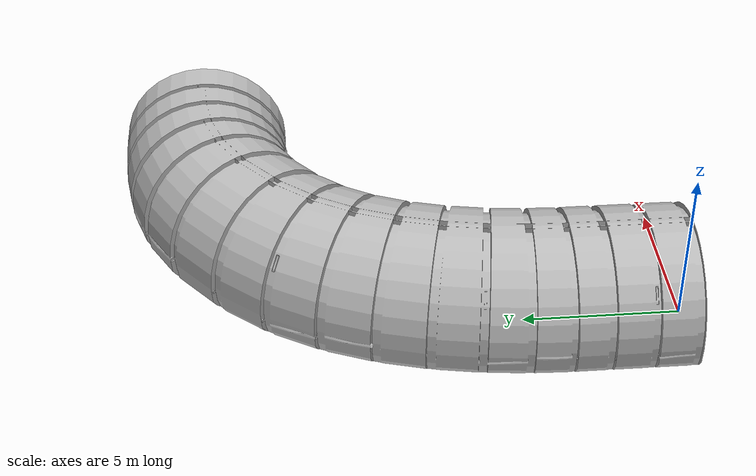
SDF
<?xml version="1.0" ?>
<sdf version="1.6">
  <model name="tunnel_corner_right">
    <static>true</static>
    <link name="link">
      <collision name="collision">
        <geometry>
          <mesh>
            <scale>0.01 0.01 0.01</scale>
            <uri>model://tunnel_corner_right/meshes/Tunnel_Corner_Right.obj</uri>
          </mesh>
        </geometry>
      </collision>
      <visual name="visual">
        <geometry>
          <mesh>
            <scale>0.01 0.01 0.01</scale>
            <uri>model://tunnel_corner_right/meshes/Tunnel_Corner_Right.obj</uri>
          </mesh>
        </geometry>
      </visual>
    </link>
  </model>
</sdf>
